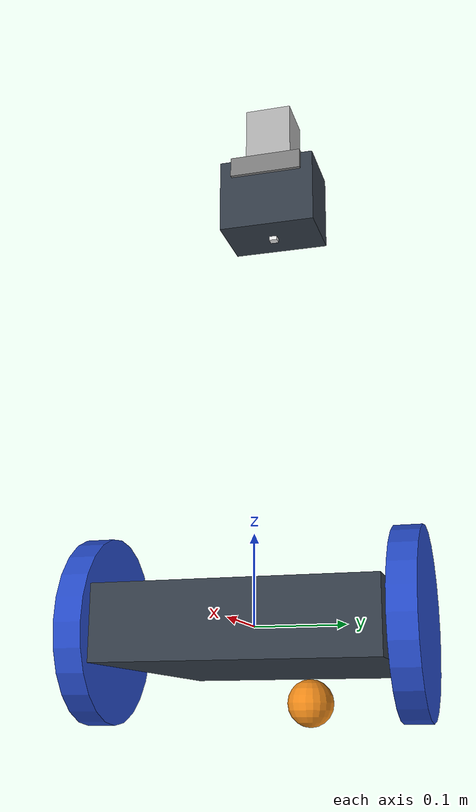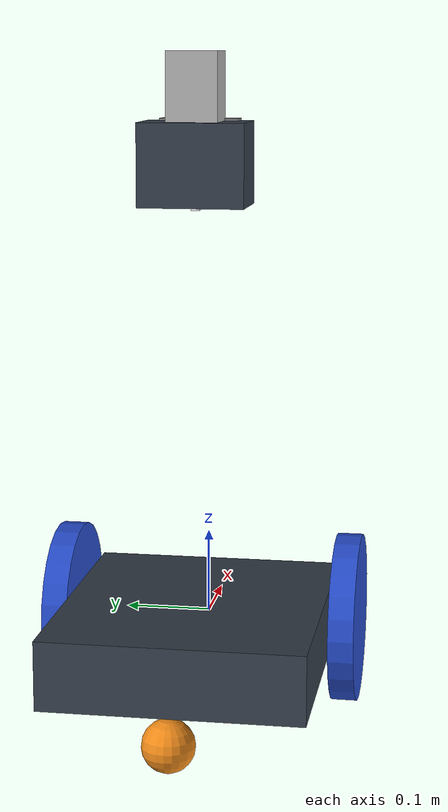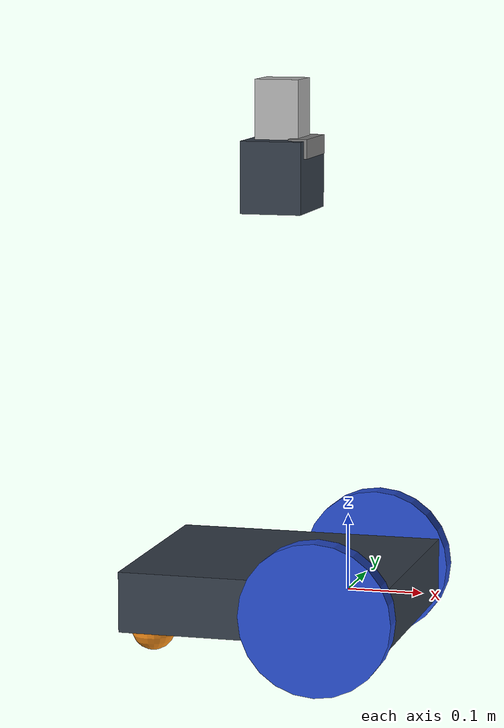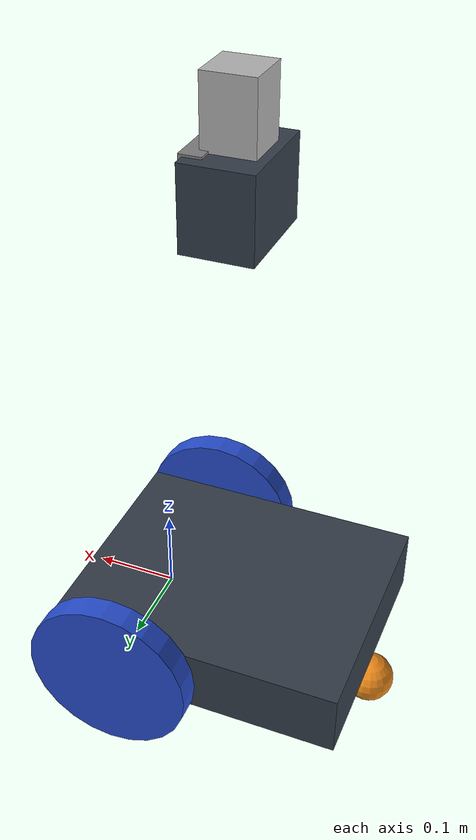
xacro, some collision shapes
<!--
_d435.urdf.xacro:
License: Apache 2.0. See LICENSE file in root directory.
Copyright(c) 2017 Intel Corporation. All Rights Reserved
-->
<?xml version="1.0"?>
<robot name="idealfish" xmlns:xacro="https://www.ros.org/wiki/xacro" >
  <xacro:include filename="$(find idealfish_description)/urdf/base.urdf.xacro" />
  <xacro:include filename="$(find flyingcar_description)/urdf/flyingcar.urdf.xacro" />
  <xacro:include filename="$(find idealfish_description)/urdf/base.materials.xacro"/>

  <xacro:flyingcar parent="sensor_link"/>

  <joint name="sensor_link_joint" type="fixed">
    <origin xyz="0 0 0.5" rpy="0 0 0"/>
    <parent link="body_link"/>
    <child link="sensor_link" />
  </joint>

  <link name="sensor_link">
    <visual>
      <origin xyz="0 0 0" rpy="0 0 0"/>
      <geometry>
        <box size="0.01 0.01 0.01" />
      </geometry>
      <material name="White" />
    </visual>
  </link>

</robot>

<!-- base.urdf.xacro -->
<robot name="idealfish" xmlns:xacro="https://www.ros.org/wiki/xacro" >
  <xacro:include filename="$(find idealfish_description)/urdf/base.gazebo.xacro"/>
  <xacro:include filename="$(find idealfish_description)/urdf/wheel.macro.xacro"/>
  <xacro:include filename="$(find idealfish_description)/urdf/base.transmission.xacro"/>
  <xacro:property name="M_PI" value="3.14159"/>

  <link name="base_link">
    <visual>
      <origin xyz="0 0 0" rpy="0 0 0"/>
      <geometry>
        <box size="0.01 0.01 0.01" />
      </geometry>
      <material name="White" />
    </visual>
  </link>

  <joint name="base_link_joint" type="fixed">
    <origin xyz="-0.09 0 0" rpy="0 0 0"/>
    <parent link="base_link"/>
    <child link="body_link" />
  </joint>

  <link name="body_link">
    <!-- base -->
    <inertial>
      <mass value="10"/>
      <origin rpy="0 0 0" xyz="0 0 0"/>
      <inertia ixx="0.0803333333333" ixy="0" ixz="0" iyy="0.11333333333" iyz="0" izz="0.183"/>
    </inertial>
    <collision name="collision_base_link">
      <geometry>
        <box size="0.36 0.3 0.08"/>
      </geometry>
    </collision>
    <visual>
      <origin rpy="0 0 0" xyz="0 0 0"/>
      <geometry>
        <box size="0.36 0.3 0.08"/>
      </geometry>
      <material name="blue"/>
    </visual>

    <!-- caster back -->
    <collision name="caster_front_collision">
      <origin rpy=" 0 0 0" xyz="-0.18 0 -0.07"/>
      <geometry>
        <sphere radius="0.03"/>
      </geometry>
      <surface>
        <friction>
          <ode>
            <mu>0</mu>
            <mu2>0</mu2>
            <slip1>1.0</slip1>
            <slip2>1.0</slip2>
          </ode>
        </friction>
      </surface>
    </collision>
    <visual name="caster_front_visual">
      <origin rpy=" 0 0 0" xyz="-0.18 0 -0.07"/>
      <geometry>
        <sphere radius="0.03"/>
      </geometry>
    </visual>
    </link>

  <!-- Create wheel right, left link -->
  <xacro:link_wheel name="link_right_wheel"/>
  <xacro:link_wheel name="link_left_wheel"/>

  <!-- Create wheel right, left joint -->
  <xacro:joint_wheel name="joint_right_wheel" child="link_right_wheel" origin_xyz="-0.0 0.17 0"/><!--width = 0.3/2+0.005+0.03/2-->
  <xacro:joint_wheel name="joint_left_wheel" child="link_left_wheel" origin_xyz="-0.0 -0.17 0"/>

  <!-- Create wheel right, left transmission -->
  <xacro:right_wheel_trans/>
  <xacro:left_wheel_trans/>
</robot>

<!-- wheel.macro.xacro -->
<robot xmlns:xacro="http://www.ros.org/wiki/xacro">
    <xacro:macro name="link_wheel" params="name">
        <link name="${name}">
            <inertial>
              <mass value="2.5"/>
              <origin rpy="0 ${M_PI/2} ${M_PI/2}" xyz="0 0 0"/>
              <inertia  ixx="0.02467" ixy="0" ixz="0" iyy="0.04411" iyz="0" izz="0.02467" />
            </inertial>
            <collision name="link_right_wheel_collision">
              <origin rpy="0 ${M_PI/2} ${M_PI/2}" xyz="0 0 0"/>
              <geometry>
                <cylinder length="0.03" radius="0.1"/>
              </geometry>
            </collision>
            <visual name="${name}_visual">
              <origin rpy="0 ${M_PI/2} ${M_PI/2}" xyz="0 0 0"/>
              <geometry>
                <cylinder length="0.03" radius="0.1"/>
              </geometry>
            </visual>
        </link>
    </xacro:macro>

    <xacro:macro name="joint_wheel" params="name child origin_xyz">
      <joint name="${name}" type="continuous">
        <origin rpy="0 0 0" xyz="${origin_xyz}"/>
        <child link="${child}"/>
        <parent link="base_link"/>
        <axis rpy="0 0 0" xyz="0 1 0"/>
        <limit effort="10000" velocity="1000"/>
        <joint_properties damping="1.0" friction="1.0"/>
      </joint>
    </xacro:macro>

</robot>

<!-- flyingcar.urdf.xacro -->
<robot xmlns:xacro="https://www.ros.org/wiki/xacro" >
  <xacro:include filename="$(find flyingcar_description)/urdf/flyingcar.gazebo.xacro"/>
  <xacro:include filename="$(find flyingcar_description)/urdf/sensors/hokuyo_utm30lx.urdf.xacro" />
  <xacro:include filename="$(find flyingcar_description)/urdf/sensors/_d435.urdf.xacro" />
  <xacro:property name="M_PI" value="3.14159"/>
  <xacro:macro name="flyingcar" params="parent">

    <!--visual body of sensor-->
    <joint name="pack_link_joint" type="fixed">
      <origin xyz="0 0 0.04675" rpy="0 0 0"/>
      <parent link="${parent}"/>
      <child link="pack_link" />
    </joint>
    <link name="pack_link">
      <inertial>
        <mass value="0.5"/>
        <origin rpy="0 0 0" xyz="0 0 0"/>
        <inertia ixx="0.01" ixy="0" ixz="0" iyy="0.01" iyz="0" izz="0.01"/>
      </inertial>
      <collision name="collision_base_link">
        <geometry>
          <box size="0.08 0.12 0.0935"/>
        </geometry>
      </collision>
      <visual>
        <origin rpy="0 0 0" xyz="0 0 0"/>
        <geometry>
          <box size="0.08 0.12 0.0935"/>
        </geometry>
        <material name="blue"/>
      </visual>
    </link>

    <!-- Sparkfun imu-->
    <joint name="imu_joint" type="fixed">
      <axis xyz="0 0 0"/>
      <origin xyz="0 0 0.078" rpy="0 3.1416 3.1416"/>
      <parent link="${parent}"/>
      <child link="base_imu_link"/>
    </joint>
    <link name="base_imu_link">
      <inertial>
        <mass value="0.001"/>
        <origin rpy="0 0 0" xyz="0 0 0"/>
        <inertia ixx="0.0001" ixy="0" ixz="0" iyy="0.000001" iyz="0" izz="0.0001"/>
      </inertial>
    </link>

    <!-- csi camera -->
    <joint name="csi_camera_joint" type="fixed">
      <axis xyz="0 0 0"/>
      <origin xyz="0 0 0.043" rpy="0 0 0"/>
      <parent link="${parent}"/>
      <child link="csi_camera_link"/>
    </joint>
    <link name="csi_camera_link"/>

    <!-- Hokuyo utm30lx-->
    <xacro:hokuyo_utm30lx name="hokuyo" parent="${parent}">
      <origin xyz="0 0 0.1275" rpy="0 0 0"/> <!--real measure from blue extend version-->
    </xacro:hokuyo_utm30lx>

    <!-- Intel realsense-->
    <xacro:sensor_d435 parent="${parent}">
      <origin xyz="0.032 0 0.071" rpy="0 0 0"/> <!--real measure from blue extend version-->
    </xacro:sensor_d435>

  </xacro:macro>
</robot>

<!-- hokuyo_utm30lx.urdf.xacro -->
<robot xmlns:xacro="http://ros.org/wiki/xacro">
  <xacro:include filename="$(find flyingcar_description)/urdf/sensors/hokuyo_utm30lx.gazebo.xacro" />
  <xacro:macro name="hokuyo_utm30lx" params="name parent *origin">

    <joint name="${name}_joint" type="fixed">
      <!--origin xyz="0.105 0.000 0.229" rpy="0 0 0" /-->
      <xacro:insert_block name="origin" />
      <parent link="${parent}"/>
      <child link="${name}_link"/>
    </joint>

    <link name="${name}_link">
      <visual>
        <origin xyz="0 0 0" rpy="0 0 0" />
        <geometry>
        <mesh filename="package://flyingcar_description/meshes/hokuyo_utm30lx/hokuyo_utm_30lx.dae"/>
      </geometry>
      </visual>
      <collision>
        <origin xyz="0 0 0" rpy="0 0 0" />
        <geometry>
        <box size="0.058 0.058 0.087" />
      </geometry>
      </collision>
    </link>

    <!-- extensions -->
    <xacro:hokuyo_utm30lx_gazebo name="${name}" ros_topic="/scan" update_rate="40" ray_count="720" min_angle="${-M_PI}" max_angle="${M_PI}"/>
  </xacro:macro>

</robot>

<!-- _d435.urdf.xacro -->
<robot xmlns:xacro="http://ros.org/wiki/xacro">
  <xacro:include filename="$(find flyingcar_description)/urdf/sensors/_d435.gazebo.xacro"/>
  <xacro:macro name="sensor_d435" params="parent *origin">
    <xacro:property name="M_PI" value="3.1415926535897931" />

    <!-- The following values are approximate, and the camera node
     publishing TF values with actual calibrated camera extrinsic values -->
    <xacro:property name="d435_cam_depth_to_left_ir_offset" value="0.0"/>
    <xacro:property name="d435_cam_depth_to_right_ir_offset" value="-0.050"/>
    <xacro:property name="d435_cam_depth_to_color_offset" value="0.015"/>

    <!-- The following values model the aluminum peripherial case for the
  	D435 camera, with the camera joint represented by the actual
  	peripherial camera tripod mount -->
    <xacro:property name="d435_cam_width" value="0.090"/>
    <xacro:property name="d435_cam_height" value="0.025"/>
    <xacro:property name="d435_cam_depth" value="0.02505"/>
    <xacro:property name="d435_cam_mount_from_center_offset" value="0.0149"/>

    <!-- The following offset is relative the the physical D435 camera peripherial
  	camera tripod mount -->
    <xacro:property name="d435_cam_depth_px" value="${d435_cam_mount_from_center_offset}"/>
    <xacro:property name="d435_cam_depth_py" value="0.0175"/>
    <xacro:property name="d435_cam_depth_pz" value="${d435_cam_height/2}"/>

    <material name="aluminum">
	  <color rgba="0.5 0.5 0.5 1"/>
    </material>

    <!-- camera body, with origin at bottom screw mount -->
    <joint name="camera_joint" type="fixed">
      <xacro:insert_block name="origin" />
      <parent link="${parent}"/>
      <child link="camera_link" />
    </joint>

    <link name="camera_link">
      <visual>
      <origin xyz="${d435_cam_mount_from_center_offset} 0.0 ${d435_cam_height/2}" rpy="${M_PI/2} 0 ${M_PI/2}"/>
        <geometry>
	  <mesh filename="package://flyingcar_description/meshes/intel_realsense_d435/d435.dae" />

        </geometry>
        <material name="aluminum"/>
      </visual>
      <collision>
        <origin xyz="0.0 0.0 ${d435_cam_height/2}" rpy="0 0 0"/>
        <geometry>
        <box size="${d435_cam_depth} ${d435_cam_width} ${d435_cam_height}"/>
        </geometry>
      </collision>
      <inertial>
        <!-- The following are not reliable values, and should not be used for modeling -->
        <mass value="0.564" />
        <origin xyz="0 0 0" />
        <inertia ixx="0.003881243" ixy="0.0" ixz="0.0" iyy="0.000498940" iyz="0.0" izz="0.003879257" />
      </inertial>
    </link>

    <!-- camera depth joints and links -->
    <joint name="camera_depth_joint" type="fixed">
      <origin xyz="${d435_cam_depth_px} ${d435_cam_depth_py} ${d435_cam_depth_pz}" rpy="0 0 0"/>
      <parent link="camera_link"/>
      <child link="camera_depth_frame" />
    </joint>
    <link name="camera_depth_frame"/>

    <joint name="camera_depth_optical_joint" type="fixed">
      <origin xyz="0 0 0" rpy="${-M_PI/2} 0 ${-M_PI/2}" />
      <parent link="camera_depth_frame" />
      <child link="camera_depth_optical_frame" />
    </joint>
    <link name="camera_depth_optical_frame"/>

    <!-- camera left IR joints and links -->
    <joint name="camera_left_ir_joint" type="fixed">
      <origin xyz="0 ${d435_cam_depth_to_left_ir_offset} 0" rpy="0 0 0" />
      <parent link="camera_depth_frame" />
      <child link="camera_left_ir_frame" />
    </joint>
    <link name="camera_left_ir_frame"/>

    <joint name="camera_left_ir_optical_joint" type="fixed">
      <origin xyz="0 0 0" rpy="${-M_PI/2} 0 ${-M_PI/2}" />
      <parent link="camera_left_ir_frame" />
      <child link="camera_left_ir_optical_frame" />
    </joint>
    <link name="camera_left_ir_optical_frame"/>

    <!-- camera right IR joints and links -->
    <joint name="camera_right_ir_joint" type="fixed">
      <origin xyz="0 ${d435_cam_depth_to_right_ir_offset} 0" rpy="0 0 0" />
      <parent link="camera_depth_frame" />
      <child link="camera_right_ir_frame" />
    </joint>
    <link name="camera_right_ir_frame"/>

    <joint name="camera_right_ir_optical_joint" type="fixed">
      <origin xyz="0 0 0" rpy="${-M_PI/2} 0 ${-M_PI/2}" />
      <parent link="camera_right_ir_frame" />
      <child link="camera_right_ir_optical_frame" />
    </joint>
    <link name="camera_right_ir_optical_frame"/>

    <!-- camera color joints and links -->
    <joint name="camera_color_joint" type="fixed">
      <origin xyz="0 ${d435_cam_depth_to_color_offset} 0" rpy="0 0 0" />
      <parent link="camera_depth_frame" />
      <child link="camera_color_frame" />
    </joint>
    <link name="camera_color_frame"/>

    <joint name="camera_color_optical_joint" type="fixed">
      <origin xyz="0 0 0" rpy="${-M_PI/2} 0 ${-M_PI/2}" />
      <parent link="camera_color_frame" />
      <child link="camera_color_optical_frame" />
    </joint>
    <link name="camera_color_optical_frame"/>

    <!-- extensions -->
    <xacro:_d435_gazebo name="camera"/>
  </xacro:macro>
</robot>

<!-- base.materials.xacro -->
<robot name="idealfish" xmlns:xacro="https://www.ros.org/wiki/xacro" >
  <material name="black">
    <color rgba="0.0 0.0 0.0 1.0"/>
  </material>
  <material name="blue">
    <color rgba="0.203125 0.23828125 0.28515625 1.0"/>
  </material>
  <material name="green">
    <color rgba="0.0 0.8 0.0 1.0"/>
  </material>
  <material name="grey">
    <color rgba="0.2 0.2 0.2 1.0"/>
  </material>
  <material name="orange">
    <color rgba="1.0 0.423529411765 0.0392156862745 1.0"/>
  </material>
  <material name="brown">
    <color rgba="0.870588235294 0.811764705882 0.764705882353 1.0"/>
  </material>
  <material name="red">
    <color rgba="0.80078125 0.12890625 0.1328125 1.0"/>
  </material>
  <material name="white">
    <color rgba="1.0 1.0 1.0 1.0"/>
  </material>
</robot>
